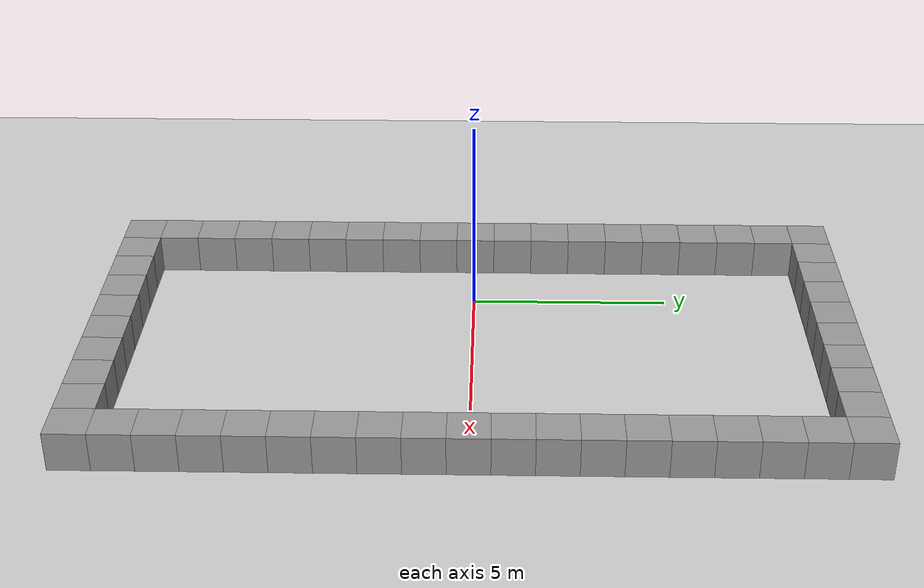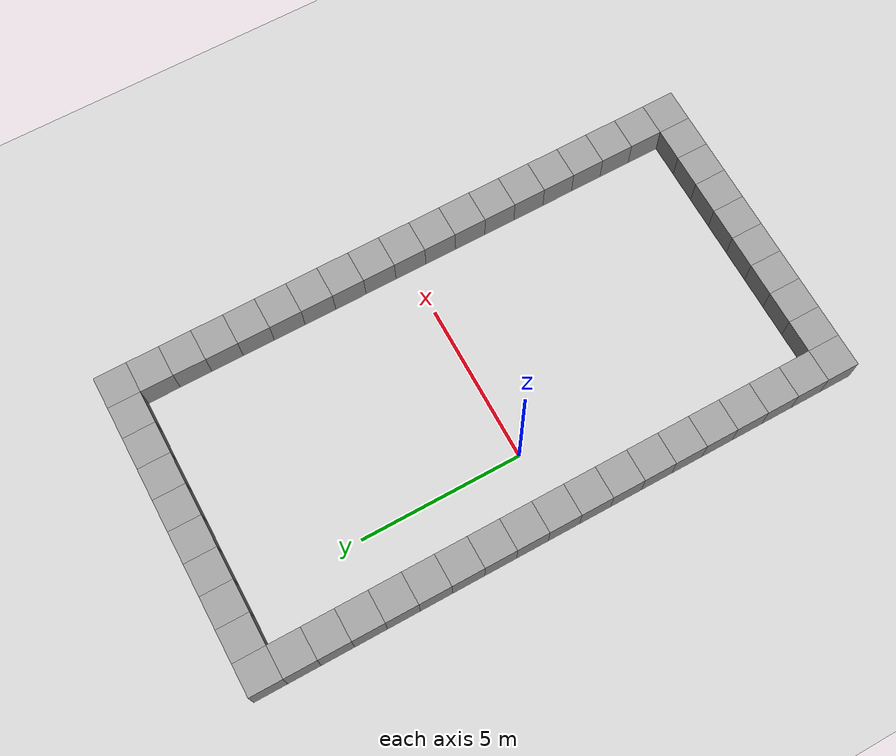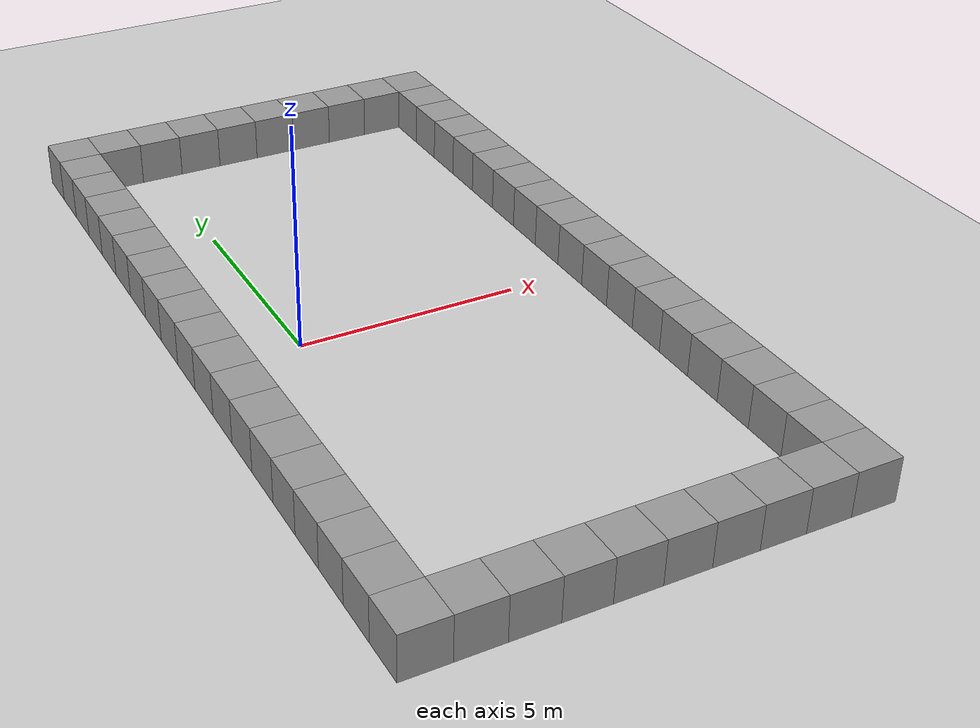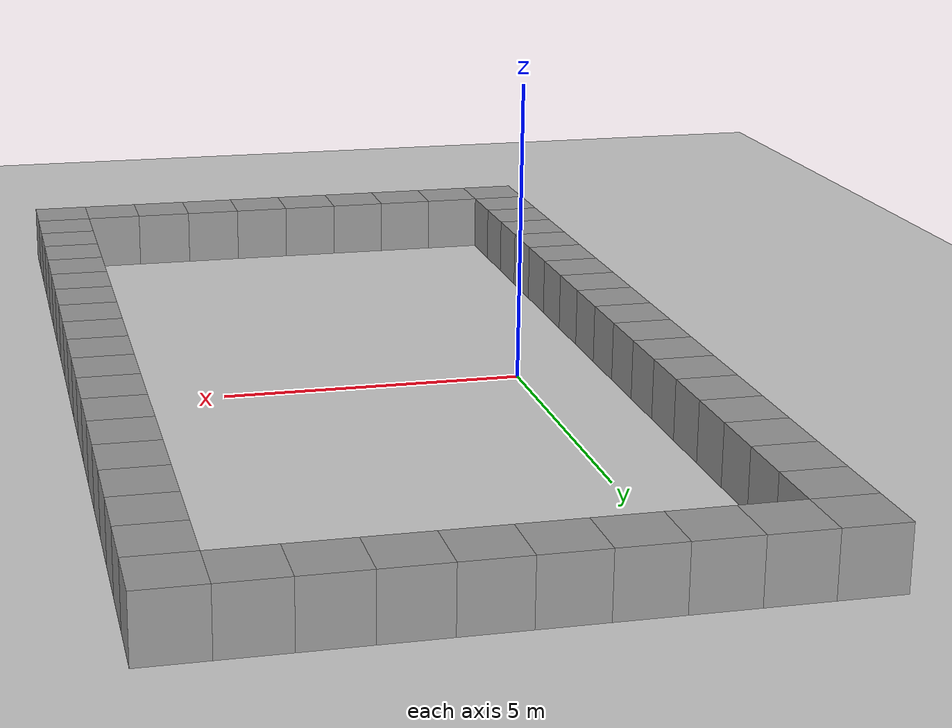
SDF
<sdf version="1.4">
 <world name="default">
  <light name="sun" type="directional">
   <pose>0 0 10 0 -0 0</pose>
   <diffuse>0.8 0.8 0.8 1</diffuse>
   <specular>0.2 0.2 0.2 1</specular>
   <attenuation>
    <range>1000</range>
    <constant>0.9</constant>
    <linear>0.01</linear>
    <quadratic>0.001</quadratic>
   </attenuation>
   <direction>-0.5 0.1 -0.9</direction>
  </light>
  <model name="ground_plane">
   <static>1</static>
   <link name="link">
    <collision name="collision">
     <geometry><plane><normal>0 0 1</normal><size>100 100</size></plane></geometry>
     <surface><friction><ode><mu>100</mu><mu2>50</mu2></ode></friction></surface>
    </collision>
    <visual name="visual">
     <cast_shadows>0</cast_shadows>
     <geometry><plane><normal>0 0 1</normal><size>100 100</size></plane></geometry>
     <material>
      <script><uri>file://media/materials/scripts/gazebo.material</uri><name>Gazebo/Grey</name></script>
     </material>
    </visual>
    <velocity_decay><linear>0</linear><angular>0</angular></velocity_decay>
   </link>
  </model>
  <physics type="ode">
   <max_step_size>0.001</max_step_size>
   <real_time_factor>1</real_time_factor>
   <real_time_update_rate>1000</real_time_update_rate>
   <gravity>0 0 -9.8</gravity>
  </physics>
  <scene><ambient>0.4 0.4 0.4 1</ambient><background>0.7 0.7 0.7 1</background><shadows>1</shadows></scene>
  <spherical_coordinates>
   <surface_model>EARTH_WGS84</surface_model>
   <latitude_deg>0</latitude_deg>
   <longitude_deg>0</longitude_deg>
   <elevation>0</elevation>
   <heading_deg>0</heading_deg>
  </spherical_coordinates>
  <model name="unit_box_3">
   <pose>-2 -6.00001 0.5 -0 -0 -3e-06</pose>
   <link name="link">
    <inertial>
     <mass>1</mass>
     <inertia><ixx>1</ixx><ixy>0</ixy><ixz>0</ixz><iyy>1</iyy><iyz>0</iyz><izz>1</izz></inertia>
    </inertial>
    <collision name="collision"><geometry><box><size>1 1 1</size></box></geometry></collision>
    <visual name="visual">
     <geometry><box><size>1 1 1</size></box></geometry>
     <material>
      <script><uri>file://media/materials/scripts/gazebo.material</uri><name>Gazebo/Grey</name></script>
     </material>
    </visual>
    <velocity_decay><linear>0</linear><angular>0</angular></velocity_decay>
   </link>
   <static>0</static>
  </model>
  <model name="unit_box_4">
   <pose>-2 -7.00002 0.5 0 -0 -3e-06</pose>
   <link name="link">
    <inertial>
     <mass>1</mass>
     <inertia><ixx>1</ixx><ixy>0</ixy><ixz>0</ixz><iyy>1</iyy><iyz>0</iyz><izz>1</izz></inertia>
    </inertial>
    <collision name="collision"><geometry><box><size>1 1 1</size></box></geometry></collision>
    <visual name="visual">
     <geometry><box><size>1 1 1</size></box></geometry>
     <material>
      <script><uri>file://media/materials/scripts/gazebo.material</uri><name>Gazebo/Grey</name></script>
     </material>
    </visual>
    <velocity_decay><linear>0</linear><angular>0</angular></velocity_decay>
   </link>
   <static>0</static>
  </model>
  <model name="unit_box_5">
   <pose>-2 -8.00002 0.5 0 -0 -4e-06</pose>
   <link name="link">
    <inertial>
     <mass>1</mass>
     <inertia><ixx>1</ixx><ixy>0</ixy><ixz>0</ixz><iyy>1</iyy><iyz>0</iyz><izz>1</izz></inertia>
    </inertial>
    <collision name="collision"><geometry><box><size>1 1 1</size></box></geometry></collision>
    <visual name="visual">
     <geometry><box><size>1 1 1</size></box></geometry>
     <material>
      <script><uri>file://media/materials/scripts/gazebo.material</uri><name>Gazebo/Grey</name></script>
     </material>
    </visual>
    <velocity_decay><linear>0</linear><angular>0</angular></velocity_decay>
   </link>
   <static>0</static>
  </model>
  <model name="unit_box_6">
   <pose>-2 -9.00002 0.5 0 -0 -4e-06</pose>
   <link name="link">
    <inertial>
     <mass>1</mass>
     <inertia><ixx>1</ixx><ixy>0</ixy><ixz>0</ixz><iyy>1</iyy><iyz>0</iyz><izz>1</izz></inertia>
    </inertial>
    <collision name="collision"><geometry><box><size>1 1 1</size></box></geometry></collision>
    <visual name="visual">
     <geometry><box><size>1 1 1</size></box></geometry>
     <material>
      <script><uri>file://media/materials/scripts/gazebo.material</uri><name>Gazebo/Grey</name></script>
     </material>
    </visual>
    <velocity_decay><linear>0</linear><angular>0</angular></velocity_decay>
   </link>
   <static>0</static>
  </model>
  <model name="unit_box_7">
   <pose>-1.99999 -5.00001 0.5 0 -0 -3e-06</pose>
   <link name="link">
    <inertial>
     <mass>1</mass>
     <inertia><ixx>1</ixx><ixy>0</ixy><ixz>0</ixz><iyy>1</iyy><iyz>0</iyz><izz>1</izz></inertia>
    </inertial>
    <collision name="collision"><geometry><box><size>1 1 1</size></box></geometry></collision>
    <visual name="visual">
     <geometry><box><size>1 1 1</size></box></geometry>
     <material>
      <script><uri>file://media/materials/scripts/gazebo.material</uri><name>Gazebo/Grey</name></script>
     </material>
    </visual>
    <velocity_decay><linear>0</linear><angular>0</angular></velocity_decay>
   </link>
   <static>0</static>
  </model>
  <model name="unit_box_8">
   <pose>-2 -4.00001 0.5 0 -0 -3e-06</pose>
   <link name="link">
    <inertial>
     <mass>1</mass>
     <inertia><ixx>1</ixx><ixy>0</ixy><ixz>0</ixz><iyy>1</iyy><iyz>0</iyz><izz>1</izz></inertia>
    </inertial>
    <collision name="collision"><geometry><box><size>1 1 1</size></box></geometry></collision>
    <visual name="visual">
     <geometry><box><size>1 1 1</size></box></geometry>
     <material>
      <script><uri>file://media/materials/scripts/gazebo.material</uri><name>Gazebo/Grey</name></script>
     </material>
    </visual>
    <velocity_decay><linear>0</linear><angular>0</angular></velocity_decay>
   </link>
   <static>0</static>
  </model>
  <model name="unit_box_9">
   <pose>-1.99999 -3.00001 0.5 0 0 -3e-06</pose>
   <link name="link">
    <inertial>
     <mass>1</mass>
     <inertia><ixx>1</ixx><ixy>0</ixy><ixz>0</ixz><iyy>1</iyy><iyz>0</iyz><izz>1</izz></inertia>
    </inertial>
    <collision name="collision"><geometry><box><size>1 1 1</size></box></geometry></collision>
    <visual name="visual">
     <geometry><box><size>1 1 1</size></box></geometry>
     <material>
      <script><uri>file://media/materials/scripts/gazebo.material</uri><name>Gazebo/Grey</name></script>
     </material>
    </visual>
    <velocity_decay><linear>0</linear><angular>0</angular></velocity_decay>
   </link>
   <static>0</static>
  </model>
  <model name="unit_box_10">
   <pose>-2 -2.00001 0.5 1e-06 -0 -1e-06</pose>
   <link name="link">
    <inertial>
     <mass>1</mass>
     <inertia><ixx>1</ixx><ixy>0</ixy><ixz>0</ixz><iyy>1</iyy><iyz>0</iyz><izz>1</izz></inertia>
    </inertial>
    <collision name="collision"><geometry><box><size>1 1 1</size></box></geometry></collision>
    <visual name="visual">
     <geometry><box><size>1 1 1</size></box></geometry>
     <material>
      <script><uri>file://media/materials/scripts/gazebo.material</uri><name>Gazebo/Grey</name></script>
     </material>
    </visual>
    <velocity_decay><linear>0</linear><angular>0</angular></velocity_decay>
   </link>
   <static>0</static>
  </model>
  <model name="unit_box_11">
   <pose>-2 -1.00001 0.5 -0 -0 -1e-06</pose>
   <link name="link">
    <inertial>
     <mass>1</mass>
     <inertia><ixx>1</ixx><ixy>0</ixy><ixz>0</ixz><iyy>1</iyy><iyz>0</iyz><izz>1</izz></inertia>
    </inertial>
    <collision name="collision"><geometry><box><size>1 1 1</size></box></geometry></collision>
    <visual name="visual">
     <geometry><box><size>1 1 1</size></box></geometry>
     <material>
      <script><uri>file://media/materials/scripts/gazebo.material</uri><name>Gazebo/Grey</name></script>
     </material>
    </visual>
    <velocity_decay><linear>0</linear><angular>0</angular></velocity_decay>
   </link>
   <static>0</static>
  </model>
  <model name="unit_box_12">
   <pose>-2.00003 -5e-06 0.5 0 0 -1e-06</pose>
   <link name="link">
    <inertial>
     <mass>1</mass>
     <inertia><ixx>1</ixx><ixy>0</ixy><ixz>0</ixz><iyy>1</iyy><iyz>0</iyz><izz>1</izz></inertia>
    </inertial>
    <collision name="collision"><geometry><box><size>1 1 1</size></box></geometry></collision>
    <visual name="visual">
     <geometry><box><size>1 1 1</size></box></geometry>
     <material>
      <script><uri>file://media/materials/scripts/gazebo.material</uri><name>Gazebo/Grey</name></script>
     </material>
    </visual>
    <velocity_decay><linear>0</linear><angular>0</angular></velocity_decay>
   </link>
   <static>0</static>
  </model>
  <model name="unit_box_21">
   <pose>7.00003 -1e-06 0.499997 3e-06 4e-06 -1e-06</pose>
   <link name="link">
    <inertial>
     <mass>1</mass>
     <inertia><ixx>1</ixx><ixy>0</ixy><ixz>0</ixz><iyy>1</iyy><iyz>0</iyz><izz>1</izz></inertia>
    </inertial>
    <collision name="collision"><geometry><box><size>1 1 1</size></box></geometry></collision>
    <visual name="visual">
     <geometry><box><size>1 1 1</size></box></geometry>
     <material>
      <script><uri>file://media/materials/scripts/gazebo.material</uri><name>Gazebo/Grey</name></script>
     </material>
    </visual>
    <velocity_decay><linear>0</linear><angular>0</angular></velocity_decay>
   </link>
   <static>0</static>
  </model>
  <model name="unit_box_22">
   <pose>-1 -9 0.5 0 -0 -4e-06</pose>
   <link name="link">
    <inertial>
     <mass>1</mass>
     <inertia><ixx>1</ixx><ixy>0</ixy><ixz>0</ixz><iyy>1</iyy><iyz>0</iyz><izz>1</izz></inertia>
    </inertial>
    <collision name="collision"><geometry><box><size>1 1 1</size></box></geometry></collision>
    <visual name="visual">
     <geometry><box><size>1 1 1</size></box></geometry>
     <material>
      <script><uri>file://media/materials/scripts/gazebo.material</uri><name>Gazebo/Grey</name></script>
     </material>
    </visual>
    <velocity_decay><linear>0</linear><angular>0</angular></velocity_decay>
   </link>
   <static>0</static>
  </model>
  <model name="unit_box_23">
   <pose>-0 -9 0.5 0 -0 -3e-06</pose>
   <link name="link">
    <inertial>
     <mass>1</mass>
     <inertia><ixx>1</ixx><ixy>0</ixy><ixz>0</ixz><iyy>1</iyy><iyz>0</iyz><izz>1</izz></inertia>
    </inertial>
    <collision name="collision"><geometry><box><size>1 1 1</size></box></geometry></collision>
    <visual name="visual">
     <geometry><box><size>1 1 1</size></box></geometry>
     <material>
      <script><uri>file://media/materials/scripts/gazebo.material</uri><name>Gazebo/Grey</name></script>
     </material>
    </visual>
    <velocity_decay><linear>0</linear><angular>0</angular></velocity_decay>
   </link>
   <static>0</static>
  </model>
  <model name="unit_box_24">
   <pose>1 -9 0.5 0 0 -3e-06</pose>
   <link name="link">
    <inertial>
     <mass>1</mass>
     <inertia><ixx>1</ixx><ixy>0</ixy><ixz>0</ixz><iyy>1</iyy><iyz>0</iyz><izz>1</izz></inertia>
    </inertial>
    <collision name="collision"><geometry><box><size>1 1 1</size></box></geometry></collision>
    <visual name="visual">
     <geometry><box><size>1 1 1</size></box></geometry>
     <material>
      <script><uri>file://media/materials/scripts/gazebo.material</uri><name>Gazebo/Grey</name></script>
     </material>
    </visual>
    <velocity_decay><linear>0</linear><angular>0</angular></velocity_decay>
   </link>
   <static>0</static>
  </model>
  <model name="unit_box_25">
   <pose>2 -9 0.5 -0 -0 -3e-06</pose>
   <link name="link">
    <inertial>
     <mass>1</mass>
     <inertia><ixx>1</ixx><ixy>0</ixy><ixz>0</ixz><iyy>1</iyy><iyz>0</iyz><izz>1</izz></inertia>
    </inertial>
    <collision name="collision"><geometry><box><size>1 1 1</size></box></geometry></collision>
    <visual name="visual">
     <geometry><box><size>1 1 1</size></box></geometry>
     <material>
      <script><uri>file://media/materials/scripts/gazebo.material</uri><name>Gazebo/Grey</name></script>
     </material>
    </visual>
    <velocity_decay><linear>0</linear><angular>0</angular></velocity_decay>
   </link>
   <static>0</static>
  </model>
  <model name="unit_box_26">
   <pose>3.00001 -9 0.5 0 0 -2e-06</pose>
   <link name="link">
    <inertial>
     <mass>1</mass>
     <inertia><ixx>1</ixx><ixy>0</ixy><ixz>0</ixz><iyy>1</iyy><iyz>0</iyz><izz>1</izz></inertia>
    </inertial>
    <collision name="collision"><geometry><box><size>1 1 1</size></box></geometry></collision>
    <visual name="visual">
     <geometry><box><size>1 1 1</size></box></geometry>
     <material>
      <script><uri>file://media/materials/scripts/gazebo.material</uri><name>Gazebo/Grey</name></script>
     </material>
    </visual>
    <velocity_decay><linear>0</linear><angular>0</angular></velocity_decay>
   </link>
   <static>0</static>
  </model>
  <model name="unit_box_27">
   <pose>4.00001 -8.99999 0.5 0 0 -5e-06</pose>
   <link name="link">
    <inertial>
     <mass>1</mass>
     <inertia><ixx>1</ixx><ixy>0</ixy><ixz>0</ixz><iyy>1</iyy><iyz>0</iyz><izz>1</izz></inertia>
    </inertial>
    <collision name="collision"><geometry><box><size>1 1 1</size></box></geometry></collision>
    <visual name="visual">
     <geometry><box><size>1 1 1</size></box></geometry>
     <material>
      <script><uri>file://media/materials/scripts/gazebo.material</uri><name>Gazebo/Grey</name></script>
     </material>
    </visual>
    <velocity_decay><linear>0</linear><angular>0</angular></velocity_decay>
   </link>
   <static>0</static>
  </model>
  <model name="unit_box_28">
   <pose>5.00001 -8.99999 0.5 0 0 -5e-06</pose>
   <link name="link">
    <inertial>
     <mass>1</mass>
     <inertia><ixx>1</ixx><ixy>0</ixy><ixz>0</ixz><iyy>1</iyy><iyz>0</iyz><izz>1</izz></inertia>
    </inertial>
    <collision name="collision"><geometry><box><size>1 1 1</size></box></geometry></collision>
    <visual name="visual">
     <geometry><box><size>1 1 1</size></box></geometry>
     <material>
      <script><uri>file://media/materials/scripts/gazebo.material</uri><name>Gazebo/Grey</name></script>
     </material>
    </visual>
    <velocity_decay><linear>0</linear><angular>0</angular></velocity_decay>
   </link>
   <static>0</static>
  </model>
  <model name="unit_box_29">
   <pose>6.00002 -9 0.5 0 -0 -1.2e-05</pose>
   <link name="link">
    <inertial>
     <mass>1</mass>
     <inertia><ixx>1</ixx><ixy>0</ixy><ixz>0</ixz><iyy>1</iyy><iyz>0</iyz><izz>1</izz></inertia>
    </inertial>
    <collision name="collision"><geometry><box><size>1 1 1</size></box></geometry></collision>
    <visual name="visual">
     <geometry><box><size>1 1 1</size></box></geometry>
     <material>
      <script><uri>file://media/materials/scripts/gazebo.material</uri><name>Gazebo/Grey</name></script>
     </material>
    </visual>
    <velocity_decay><linear>0</linear><angular>0</angular></velocity_decay>
   </link>
   <static>0</static>
  </model>
  <model name="unit_box_30">
   <pose>7.00002 -9.00001 0.5 0 -0 0</pose>
   <link name="link">
    <inertial>
     <mass>1</mass>
     <inertia><ixx>1</ixx><ixy>0</ixy><ixz>0</ixz><iyy>1</iyy><iyz>0</iyz><izz>1</izz></inertia>
    </inertial>
    <collision name="collision"><geometry><box><size>1 1 1</size></box></geometry></collision>
    <visual name="visual">
     <geometry><box><size>1 1 1</size></box></geometry>
     <material>
      <script><uri>file://media/materials/scripts/gazebo.material</uri><name>Gazebo/Grey</name></script>
     </material>
    </visual>
    <velocity_decay><linear>0</linear><angular>0</angular></velocity_decay>
   </link>
   <static>0</static>
  </model>
  <model name="unit_box_31">
   <pose>7 -8.00001 0.5 0 -0 0</pose>
   <link name="link">
    <inertial>
     <mass>1</mass>
     <inertia><ixx>1</ixx><ixy>0</ixy><ixz>0</ixz><iyy>1</iyy><iyz>0</iyz><izz>1</izz></inertia>
    </inertial>
    <collision name="collision"><geometry><box><size>1 1 1</size></box></geometry></collision>
    <visual name="visual">
     <geometry><box><size>1 1 1</size></box></geometry>
     <material>
      <script><uri>file://media/materials/scripts/gazebo.material</uri><name>Gazebo/Grey</name></script>
     </material>
    </visual>
    <velocity_decay><linear>0</linear><angular>0</angular></velocity_decay>
   </link>
   <static>0</static>
  </model>
  <model name="unit_box_32">
   <pose>7.00002 -7.00001 0.5 0 -0 0</pose>
   <link name="link">
    <inertial>
     <mass>1</mass>
     <inertia><ixx>1</ixx><ixy>0</ixy><ixz>0</ixz><iyy>1</iyy><iyz>0</iyz><izz>1</izz></inertia>
    </inertial>
    <collision name="collision"><geometry><box><size>1 1 1</size></box></geometry></collision>
    <visual name="visual">
     <geometry><box><size>1 1 1</size></box></geometry>
     <material>
      <script><uri>file://media/materials/scripts/gazebo.material</uri><name>Gazebo/Grey</name></script>
     </material>
    </visual>
    <velocity_decay><linear>0</linear><angular>0</angular></velocity_decay>
   </link>
   <static>0</static>
  </model>
  <model name="unit_box_33">
   <pose>7 -6.00001 0.5 0 -0 1e-06</pose>
   <link name="link">
    <inertial>
     <mass>1</mass>
     <inertia><ixx>1</ixx><ixy>0</ixy><ixz>0</ixz><iyy>1</iyy><iyz>0</iyz><izz>1</izz></inertia>
    </inertial>
    <collision name="collision"><geometry><box><size>1 1 1</size></box></geometry></collision>
    <visual name="visual">
     <geometry><box><size>1 1 1</size></box></geometry>
     <material>
      <script><uri>file://media/materials/scripts/gazebo.material</uri><name>Gazebo/Grey</name></script>
     </material>
    </visual>
    <velocity_decay><linear>0</linear><angular>0</angular></velocity_decay>
   </link>
   <static>0</static>
  </model>
  <model name="unit_box_34">
   <pose>7 -5 0.5 0 -0 0</pose>
   <link name="link">
    <inertial>
     <mass>1</mass>
     <inertia><ixx>1</ixx><ixy>0</ixy><ixz>0</ixz><iyy>1</iyy><iyz>0</iyz><izz>1</izz></inertia>
    </inertial>
    <collision name="collision"><geometry><box><size>1 1 1</size></box></geometry></collision>
    <visual name="visual">
     <geometry><box><size>1 1 1</size></box></geometry>
     <material>
      <script><uri>file://media/materials/scripts/gazebo.material</uri><name>Gazebo/Grey</name></script>
     </material>
    </visual>
    <velocity_decay><linear>0</linear><angular>0</angular></velocity_decay>
   </link>
   <static>0</static>
  </model>
  <model name="unit_box_35">
   <pose>7.00001 -4 0.5 0 -0 0</pose>
   <link name="link">
    <inertial>
     <mass>1</mass>
     <inertia><ixx>1</ixx><ixy>0</ixy><ixz>0</ixz><iyy>1</iyy><iyz>0</iyz><izz>1</izz></inertia>
    </inertial>
    <collision name="collision"><geometry><box><size>1 1 1</size></box></geometry></collision>
    <visual name="visual">
     <geometry><box><size>1 1 1</size></box></geometry>
     <material>
      <script><uri>file://media/materials/scripts/gazebo.material</uri><name>Gazebo/Grey</name></script>
     </material>
    </visual>
    <velocity_decay><linear>0</linear><angular>0</angular></velocity_decay>
   </link>
   <static>0</static>
  </model>
  <model name="unit_box_36">
   <pose>7.00002 -3 0.5 0 -0 0</pose>
   <link name="link">
    <inertial>
     <mass>1</mass>
     <inertia><ixx>1</ixx><ixy>0</ixy><ixz>0</ixz><iyy>1</iyy><iyz>0</iyz><izz>1</izz></inertia>
    </inertial>
    <collision name="collision"><geometry><box><size>1 1 1</size></box></geometry></collision>
    <visual name="visual">
     <geometry><box><size>1 1 1</size></box></geometry>
     <material>
      <script><uri>file://media/materials/scripts/gazebo.material</uri><name>Gazebo/Grey</name></script>
     </material>
    </visual>
    <velocity_decay><linear>0</linear><angular>0</angular></velocity_decay>
   </link>
   <static>0</static>
  </model>
  <model name="unit_box_37">
   <pose>7.00003 -2 0.499995 -3e-06 3e-06 0</pose>
   <link name="link">
    <inertial>
     <mass>1</mass>
     <inertia><ixx>1</ixx><ixy>0</ixy><ixz>0</ixz><iyy>1</iyy><iyz>0</iyz><izz>1</izz></inertia>
    </inertial>
    <collision name="collision"><geometry><box><size>1 1 1</size></box></geometry></collision>
    <visual name="visual">
     <geometry><box><size>1 1 1</size></box></geometry>
     <material>
      <script><uri>file://media/materials/scripts/gazebo.material</uri><name>Gazebo/Grey</name></script>
     </material>
    </visual>
    <velocity_decay><linear>0</linear><angular>0</angular></velocity_decay>
   </link>
   <static>0</static>
  </model>
  <model name="unit_box_38">
   <pose>7 -1 0.499999 4e-06 2e-06 -1.61559e-27</pose>
   <link name="link">
    <inertial>
     <mass>1</mass>
     <inertia><ixx>1</ixx><ixy>0</ixy><ixz>0</ixz><iyy>1</iyy><iyz>0</iyz><izz>1</izz></inertia>
    </inertial>
    <collision name="collision"><geometry><box><size>1 1 1</size></box></geometry></collision>
    <visual name="visual">
     <geometry><box><size>1 1 1</size></box></geometry>
     <material>
      <script><uri>file://media/materials/scripts/gazebo.material</uri><name>Gazebo/Grey</name></script>
     </material>
    </visual>
    <velocity_decay><linear>0</linear><angular>0</angular></velocity_decay>
   </link>
   <static>0</static>
  </model>
  <model name="unit_box_1">
   <pose>-2.00002 1 0.5 0 -0 4e-06</pose>
   <link name="link">
    <inertial>
     <mass>1</mass>
     <inertia><ixx>1</ixx><ixy>0</ixy><ixz>0</ixz><iyy>1</iyy><iyz>0</iyz><izz>1</izz></inertia>
    </inertial>
    <collision name="collision"><geometry><box><size>1 1 1</size></box></geometry></collision>
    <visual name="visual">
     <geometry><box><size>1 1 1</size></box></geometry>
     <material>
      <script><uri>file://media/materials/scripts/gazebo.material</uri><name>Gazebo/Grey</name></script>
     </material>
    </visual>
    <velocity_decay><linear>0</linear><angular>0</angular></velocity_decay>
   </link>
   <static>0</static>
  </model>
  <model name="unit_box_2">
   <pose>-2.00001 2 0.5 0 -0 4e-06</pose>
   <link name="link">
    <inertial>
     <mass>1</mass>
     <inertia><ixx>1</ixx><ixy>0</ixy><ixz>0</ixz><iyy>1</iyy><iyz>0</iyz><izz>1</izz></inertia>
    </inertial>
    <collision name="collision"><geometry><box><size>1 1 1</size></box></geometry></collision>
    <visual name="visual">
     <geometry><box><size>1 1 1</size></box></geometry>
     <material>
      <script><uri>file://media/materials/scripts/gazebo.material</uri><name>Gazebo/Grey</name></script>
     </material>
    </visual>
    <velocity_decay><linear>0</linear><angular>0</angular></velocity_decay>
   </link>
   <static>0</static>
  </model>
  <model name="unit_box_3_0">
   <pose>-2.00001 3 0.5 0 -0 2e-06</pose>
   <link name="link">
    <inertial>
     <mass>1</mass>
     <inertia><ixx>1</ixx><ixy>0</ixy><ixz>0</ixz><iyy>1</iyy><iyz>0</iyz><izz>1</izz></inertia>
    </inertial>
    <collision name="collision"><geometry><box><size>1 1 1</size></box></geometry></collision>
    <visual name="visual">
     <geometry><box><size>1 1 1</size></box></geometry>
     <material>
      <script><uri>file://media/materials/scripts/gazebo.material</uri><name>Gazebo/Grey</name></script>
     </material>
    </visual>
    <velocity_decay><linear>0</linear><angular>0</angular></velocity_decay>
   </link>
   <static>0</static>
  </model>
  <model name="unit_box_4_0">
   <pose>-2.00001 4 0.5 0 -0 2e-06</pose>
   <link name="link">
    <inertial>
     <mass>1</mass>
     <inertia><ixx>1</ixx><ixy>0</ixy><ixz>0</ixz><iyy>1</iyy><iyz>0</iyz><izz>1</izz></inertia>
    </inertial>
    <collision name="collision"><geometry><box><size>1 1 1</size></box></geometry></collision>
    <visual name="visual">
     <geometry><box><size>1 1 1</size></box></geometry>
     <material>
      <script><uri>file://media/materials/scripts/gazebo.material</uri><name>Gazebo/Grey</name></script>
     </material>
    </visual>
    <velocity_decay><linear>0</linear><angular>0</angular></velocity_decay>
   </link>
   <static>0</static>
  </model>
  <model name="unit_box_5_0">
   <pose>-2 5.00001 0.5 0 -0 3e-06</pose>
   <link name="link">
    <inertial>
     <mass>1</mass>
     <inertia><ixx>1</ixx><ixy>0</ixy><ixz>0</ixz><iyy>1</iyy><iyz>0</iyz><izz>1</izz></inertia>
    </inertial>
    <collision name="collision"><geometry><box><size>1 1 1</size></box></geometry></collision>
    <visual name="visual">
     <geometry><box><size>1 1 1</size></box></geometry>
     <material>
      <script><uri>file://media/materials/scripts/gazebo.material</uri><name>Gazebo/Grey</name></script>
     </material>
    </visual>
    <velocity_decay><linear>0</linear><angular>0</angular></velocity_decay>
   </link>
   <static>0</static>
  </model>
  <model name="unit_box_6_0">
   <pose>-1.99999 6.00001 0.5 0 -0 3e-06</pose>
   <link name="link">
    <inertial>
     <mass>1</mass>
     <inertia><ixx>1</ixx><ixy>0</ixy><ixz>0</ixz><iyy>1</iyy><iyz>0</iyz><izz>1</izz></inertia>
    </inertial>
    <collision name="collision"><geometry><box><size>1 1 1</size></box></geometry></collision>
    <visual name="visual">
     <geometry><box><size>1 1 1</size></box></geometry>
     <material>
      <script><uri>file://media/materials/scripts/gazebo.material</uri><name>Gazebo/Grey</name></script>
     </material>
    </visual>
    <velocity_decay><linear>0</linear><angular>0</angular></velocity_decay>
   </link>
   <static>0</static>
  </model>
  <model name="unit_box_7_0">
   <pose>-2 7.00001 0.5 0 -0 3e-06</pose>
   <link name="link">
    <inertial>
     <mass>1</mass>
     <inertia><ixx>1</ixx><ixy>0</ixy><ixz>0</ixz><iyy>1</iyy><iyz>0</iyz><izz>1</izz></inertia>
    </inertial>
    <collision name="collision"><geometry><box><size>1 1 1</size></box></geometry></collision>
    <visual name="visual">
     <geometry><box><size>1 1 1</size></box></geometry>
     <material>
      <script><uri>file://media/materials/scripts/gazebo.material</uri><name>Gazebo/Grey</name></script>
     </material>
    </visual>
    <velocity_decay><linear>0</linear><angular>0</angular></velocity_decay>
   </link>
   <static>0</static>
  </model>
  <model name="unit_box_8_0">
   <pose>-2 8.00001 0.5 0 -0 5e-06</pose>
   <link name="link">
    <inertial>
     <mass>1</mass>
     <inertia><ixx>1</ixx><ixy>0</ixy><ixz>0</ixz><iyy>1</iyy><iyz>0</iyz><izz>1</izz></inertia>
    </inertial>
    <collision name="collision"><geometry><box><size>1 1 1</size></box></geometry></collision>
    <visual name="visual">
     <geometry><box><size>1 1 1</size></box></geometry>
     <material>
      <script><uri>file://media/materials/scripts/gazebo.material</uri><name>Gazebo/Grey</name></script>
     </material>
    </visual>
    <velocity_decay><linear>0</linear><angular>0</angular></velocity_decay>
   </link>
   <static>0</static>
  </model>
  <model name="unit_box_9_0">
   <pose>-2.00001 9.00001 0.5 0 -0 3e-06</pose>
   <link name="link">
    <inertial>
     <mass>1</mass>
     <inertia><ixx>1</ixx><ixy>0</ixy><ixz>0</ixz><iyy>1</iyy><iyz>0</iyz><izz>1</izz></inertia>
    </inertial>
    <collision name="collision"><geometry><box><size>1 1 1</size></box></geometry></collision>
    <visual name="visual">
     <geometry><box><size>1 1 1</size></box></geometry>
     <material>
      <script><uri>file://media/materials/scripts/gazebo.material</uri><name>Gazebo/Grey</name></script>
     </material>
    </visual>
    <velocity_decay><linear>0</linear><angular>0</angular></velocity_decay>
   </link>
   <static>0</static>
  </model>
  <model name="unit_box_10_0">
   <pose>-1.00001 8.99999 0.499996 4e-06 -3e-06 3e-06</pose>
   <link name="link">
    <inertial>
     <mass>1</mass>
     <inertia><ixx>1</ixx><ixy>0</ixy><ixz>0</ixz><iyy>1</iyy><iyz>0</iyz><izz>1</izz></inertia>
    </inertial>
    <collision name="collision"><geometry><box><size>1 1 1</size></box></geometry></collision>
    <visual name="visual">
     <geometry><box><size>1 1 1</size></box></geometry>
     <material>
      <script><uri>file://media/materials/scripts/gazebo.material</uri><name>Gazebo/Grey</name></script>
     </material>
    </visual>
    <velocity_decay><linear>0</linear><angular>0</angular></velocity_decay>
   </link>
   <static>0</static>
  </model>
  <model name="unit_box_11_0">
   <pose>7 1 0.5 0 0 -1e-06</pose>
   <link name="link">
    <inertial>
     <mass>1</mass>
     <inertia><ixx>1</ixx><ixy>0</ixy><ixz>0</ixz><iyy>1</iyy><iyz>0</iyz><izz>1</izz></inertia>
    </inertial>
    <collision name="collision"><geometry><box><size>1 1 1</size></box></geometry></collision>
    <visual name="visual">
     <geometry><box><size>1 1 1</size></box></geometry>
     <material>
      <script><uri>file://media/materials/scripts/gazebo.material</uri><name>Gazebo/Grey</name></script>
     </material>
    </visual>
    <velocity_decay><linear>0</linear><angular>0</angular></velocity_decay>
   </link>
   <static>0</static>
  </model>
  <model name="unit_box_12_0">
   <pose>7 2 0.5 0 0 -1e-06</pose>
   <link name="link">
    <inertial>
     <mass>1</mass>
     <inertia><ixx>1</ixx><ixy>0</ixy><ixz>0</ixz><iyy>1</iyy><iyz>0</iyz><izz>1</izz></inertia>
    </inertial>
    <collision name="collision"><geometry><box><size>1 1 1</size></box></geometry></collision>
    <visual name="visual">
     <geometry><box><size>1 1 1</size></box></geometry>
     <material>
      <script><uri>file://media/materials/scripts/gazebo.material</uri><name>Gazebo/Grey</name></script>
     </material>
    </visual>
    <velocity_decay><linear>0</linear><angular>0</angular></velocity_decay>
   </link>
   <static>0</static>
  </model>
  <model name="unit_box_13_0">
   <pose>6.99999 3 0.5 0 -0 -1e-06</pose>
   <link name="link">
    <inertial>
     <mass>1</mass>
     <inertia><ixx>1</ixx><ixy>0</ixy><ixz>0</ixz><iyy>1</iyy><iyz>0</iyz><izz>1</izz></inertia>
    </inertial>
    <collision name="collision"><geometry><box><size>1 1 1</size></box></geometry></collision>
    <visual name="visual">
     <geometry><box><size>1 1 1</size></box></geometry>
     <material>
      <script><uri>file://media/materials/scripts/gazebo.material</uri><name>Gazebo/Grey</name></script>
     </material>
    </visual>
    <velocity_decay><linear>0</linear><angular>0</angular></velocity_decay>
   </link>
   <static>0</static>
  </model>
  <model name="unit_box_14_0">
   <pose>7 4 0.5 0 0 -1e-06</pose>
   <link name="link">
    <inertial>
     <mass>1</mass>
     <inertia><ixx>1</ixx><ixy>0</ixy><ixz>0</ixz><iyy>1</iyy><iyz>0</iyz><izz>1</izz></inertia>
    </inertial>
    <collision name="collision"><geometry><box><size>1 1 1</size></box></geometry></collision>
    <visual name="visual">
     <geometry><box><size>1 1 1</size></box></geometry>
     <material>
      <script><uri>file://media/materials/scripts/gazebo.material</uri><name>Gazebo/Grey</name></script>
     </material>
    </visual>
    <velocity_decay><linear>0</linear><angular>0</angular></velocity_decay>
   </link>
   <static>0</static>
  </model>
  <model name="unit_box_15_0">
   <pose>6.99998 5 0.49999 0 -0 1e-06</pose>
   <link name="link">
    <inertial>
     <mass>1</mass>
     <inertia><ixx>1</ixx><ixy>0</ixy><ixz>0</ixz><iyy>1</iyy><iyz>0</iyz><izz>1</izz></inertia>
    </inertial>
    <collision name="collision"><geometry><box><size>1 1 1</size></box></geometry></collision>
    <visual name="visual">
     <geometry><box><size>1 1 1</size></box></geometry>
     <material>
      <script><uri>file://media/materials/scripts/gazebo.material</uri><name>Gazebo/Grey</name></script>
     </material>
    </visual>
    <velocity_decay><linear>0</linear><angular>0</angular></velocity_decay>
   </link>
   <static>0</static>
  </model>
  <model name="unit_box_16_0">
   <pose>7 6.00001 0.5 0 -0 -1e-06</pose>
   <link name="link">
    <inertial>
     <mass>1</mass>
     <inertia><ixx>1</ixx><ixy>0</ixy><ixz>0</ixz><iyy>1</iyy><iyz>0</iyz><izz>1</izz></inertia>
    </inertial>
    <collision name="collision"><geometry><box><size>1 1 1</size></box></geometry></collision>
    <visual name="visual">
     <geometry><box><size>1 1 1</size></box></geometry>
     <material>
      <script><uri>file://media/materials/scripts/gazebo.material</uri><name>Gazebo/Grey</name></script>
     </material>
    </visual>
    <velocity_decay><linear>0</linear><angular>0</angular></velocity_decay>
   </link>
   <static>0</static>
  </model>
  <model name="unit_box_17_0">
   <pose>7.00001 7.00001 0.5 0 0 -1e-06</pose>
   <link name="link">
    <inertial>
     <mass>1</mass>
     <inertia><ixx>1</ixx><ixy>0</ixy><ixz>0</ixz><iyy>1</iyy><iyz>0</iyz><izz>1</izz></inertia>
    </inertial>
    <collision name="collision"><geometry><box><size>1 1 1</size></box></geometry></collision>
    <visual name="visual">
     <geometry><box><size>1 1 1</size></box></geometry>
     <material>
      <script><uri>file://media/materials/scripts/gazebo.material</uri><name>Gazebo/Grey</name></script>
     </material>
    </visual>
    <velocity_decay><linear>0</linear><angular>0</angular></velocity_decay>
   </link>
   <static>0</static>
  </model>
  <model name="unit_box_18_0">
   <pose>7 8.00001 0.5 0 -0 1e-06</pose>
   <link name="link">
    <inertial>
     <mass>1</mass>
     <inertia><ixx>1</ixx><ixy>0</ixy><ixz>0</ixz><iyy>1</iyy><iyz>0</iyz><izz>1</izz></inertia>
    </inertial>
    <collision name="collision"><geometry><box><size>1 1 1</size></box></geometry></collision>
    <visual name="visual">
     <geometry><box><size>1 1 1</size></box></geometry>
     <material>
      <script><uri>file://media/materials/scripts/gazebo.material</uri><name>Gazebo/Grey</name></script>
     </material>
    </visual>
    <velocity_decay><linear>0</linear><angular>0</angular></velocity_decay>
   </link>
   <static>0</static>
  </model>
  <model name="unit_box_20_0">
   <pose>-2e-06 9 0.5 0 -0 3e-06</pose>
   <link name="link">
    <inertial>
     <mass>1</mass>
     <inertia><ixx>1</ixx><ixy>0</ixy><ixz>0</ixz><iyy>1</iyy><iyz>0</iyz><izz>1</izz></inertia>
    </inertial>
    <collision name="collision"><geometry><box><size>1 1 1</size></box></geometry></collision>
    <visual name="visual">
     <geometry><box><size>1 1 1</size></box></geometry>
     <material>
      <script><uri>file://media/materials/scripts/gazebo.material</uri><name>Gazebo/Grey</name></script>
     </material>
    </visual>
    <velocity_decay><linear>0</linear><angular>0</angular></velocity_decay>
   </link>
   <static>0</static>
  </model>
  <model name="unit_box_21_0">
   <pose>0.999998 8.99999 0.5 0 -0 3e-06</pose>
   <link name="link">
    <inertial>
     <mass>1</mass>
     <inertia><ixx>1</ixx><ixy>0</ixy><ixz>0</ixz><iyy>1</iyy><iyz>0</iyz><izz>1</izz></inertia>
    </inertial>
    <collision name="collision"><geometry><box><size>1 1 1</size></box></geometry></collision>
    <visual name="visual">
     <geometry><box><size>1 1 1</size></box></geometry>
     <material>
      <script><uri>file://media/materials/scripts/gazebo.material</uri><name>Gazebo/Grey</name></script>
     </material>
    </visual>
    <velocity_decay><linear>0</linear><angular>0</angular></velocity_decay>
   </link>
   <static>0</static>
  </model>
  <model name="unit_box_22_0">
   <pose>2 9 0.5 0 -0 3e-06</pose>
   <link name="link">
    <inertial>
     <mass>1</mass>
     <inertia><ixx>1</ixx><ixy>0</ixy><ixz>0</ixz><iyy>1</iyy><iyz>0</iyz><izz>1</izz></inertia>
    </inertial>
    <collision name="collision"><geometry><box><size>1 1 1</size></box></geometry></collision>
    <visual name="visual">
     <geometry><box><size>1 1 1</size></box></geometry>
     <material>
      <script><uri>file://media/materials/scripts/gazebo.material</uri><name>Gazebo/Grey</name></script>
     </material>
    </visual>
    <velocity_decay><linear>0</linear><angular>0</angular></velocity_decay>
   </link>
   <static>0</static>
  </model>
  <model name="unit_box_23_0">
   <pose>3 8.99999 0.499999 3e-06 -0 3e-06</pose>
   <link name="link">
    <inertial>
     <mass>1</mass>
     <inertia><ixx>1</ixx><ixy>0</ixy><ixz>0</ixz><iyy>1</iyy><iyz>0</iyz><izz>1</izz></inertia>
    </inertial>
    <collision name="collision"><geometry><box><size>1 1 1</size></box></geometry></collision>
    <visual name="visual">
     <geometry><box><size>1 1 1</size></box></geometry>
     <material>
      <script><uri>file://media/materials/scripts/gazebo.material</uri><name>Gazebo/Grey</name></script>
     </material>
    </visual>
    <velocity_decay><linear>0</linear><angular>0</angular></velocity_decay>
   </link>
   <static>0</static>
  </model>
  <model name="unit_box_24_0">
   <pose>4 8.99999 0.5 0 -0 2e-06</pose>
   <link name="link">
    <inertial>
     <mass>1</mass>
     <inertia><ixx>1</ixx><ixy>0</ixy><ixz>0</ixz><iyy>1</iyy><iyz>0</iyz><izz>1</izz></inertia>
    </inertial>
    <collision name="collision"><geometry><box><size>1 1 1</size></box></geometry></collision>
    <visual name="visual">
     <geometry><box><size>1 1 1</size></box></geometry>
     <material>
      <script><uri>file://media/materials/scripts/gazebo.material</uri><name>Gazebo/Grey</name></script>
     </material>
    </visual>
    <velocity_decay><linear>0</linear><angular>0</angular></velocity_decay>
   </link>
   <static>0</static>
  </model>
  <model name="unit_box_25_0">
   <pose>5 9 0.5 0 -0 1e-06</pose>
   <link name="link">
    <inertial>
     <mass>1</mass>
     <inertia><ixx>1</ixx><ixy>0</ixy><ixz>0</ixz><iyy>1</iyy><iyz>0</iyz><izz>1</izz></inertia>
    </inertial>
    <collision name="collision"><geometry><box><size>1 1 1</size></box></geometry></collision>
    <visual name="visual">
     <geometry><box><size>1 1 1</size></box></geometry>
     <material>
      <script><uri>file://media/materials/scripts/gazebo.material</uri><name>Gazebo/Grey</name></script>
     </material>
    </visual>
    <velocity_decay><linear>0</linear><angular>0</angular></velocity_decay>
   </link>
   <static>0</static>
  </model>
  <model name="unit_box_26_0">
   <pose>6 8.99999 0.5 -1e-06 -0 1e-06</pose>
   <link name="link">
    <inertial>
     <mass>1</mass>
     <inertia><ixx>1</ixx><ixy>0</ixy><ixz>0</ixz><iyy>1</iyy><iyz>0</iyz><izz>1</izz></inertia>
    </inertial>
    <collision name="collision"><geometry><box><size>1 1 1</size></box></geometry></collision>
    <visual name="visual">
     <geometry><box><size>1 1 1</size></box></geometry>
     <material>
      <script><uri>file://media/materials/scripts/gazebo.material</uri><name>Gazebo/Grey</name></script>
     </material>
    </visual>
    <velocity_decay><linear>0</linear><angular>0</angular></velocity_decay>
   </link>
   <static>0</static>
  </model>
  <model name="unit_box_27_0">
   <pose>7 9.00001 0.499991 0 -0 1e-06</pose>
   <link name="link">
    <inertial>
     <mass>1</mass>
     <inertia><ixx>1</ixx><ixy>0</ixy><ixz>0</ixz><iyy>1</iyy><iyz>0</iyz><izz>1</izz></inertia>
    </inertial>
    <collision name="collision"><geometry><box><size>1 1 1</size></box></geometry></collision>
    <visual name="visual">
     <geometry><box><size>1 1 1</size></box></geometry>
     <material>
      <script><uri>file://media/materials/scripts/gazebo.material</uri><name>Gazebo/Grey</name></script>
     </material>
    </visual>
    <velocity_decay><linear>0</linear><angular>0</angular></velocity_decay>
   </link>
   <static>0</static>
  </model>
 </world>
</sdf>
